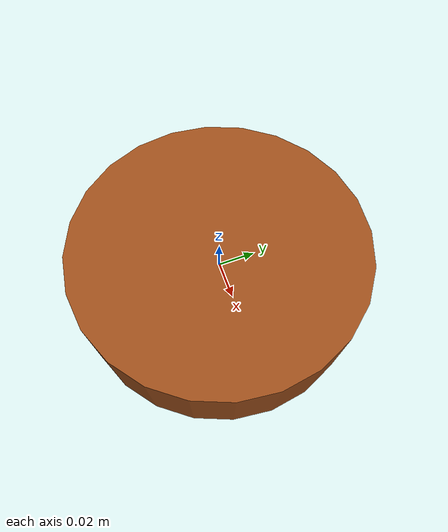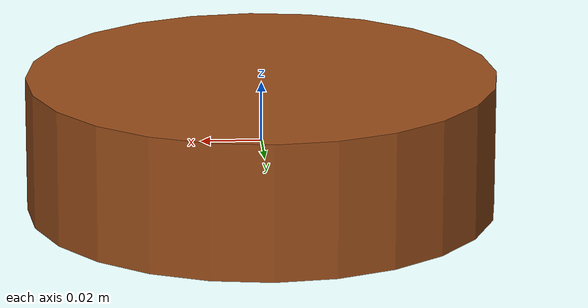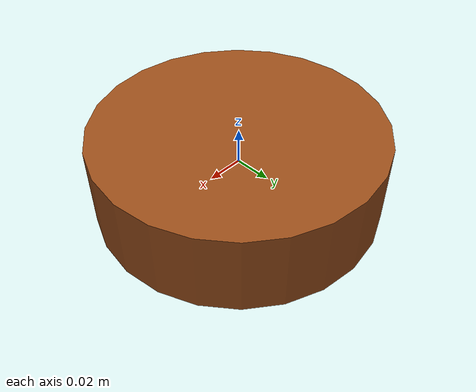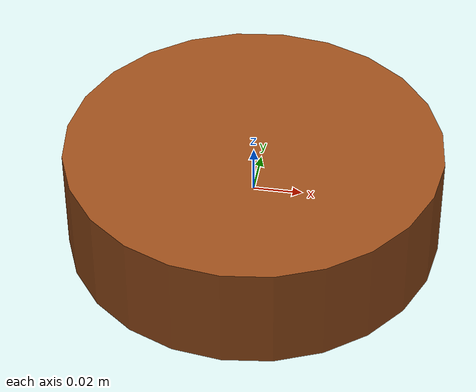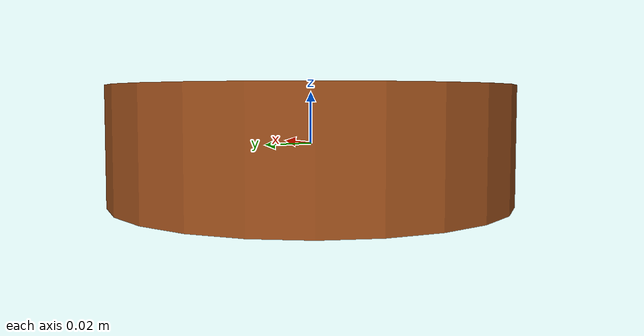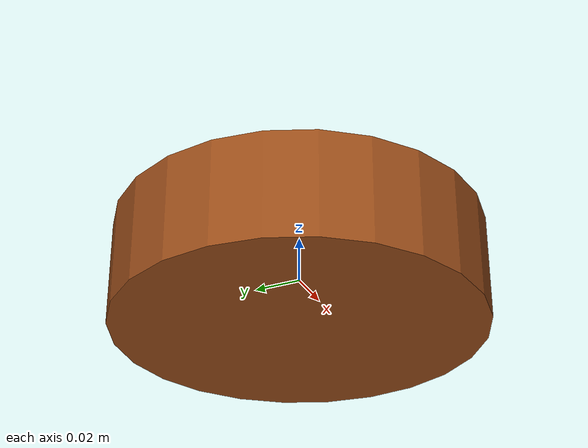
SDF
<?xml version="1.0" ?>
<sdf version="1.7">
  <model name="drum_cylinder">
    <static>true</static>
    <link name="drum_link">
      <visual name="drum_visual">
        <geometry>
          <cylinder>
            <radius>0.0775</radius>
            <length>0.045</length>
          </cylinder>
        </geometry>
        <material>
          <ambient>0.6 0.3 0.1 1</ambient>
          <diffuse>0.6 0.3 0.1 1</diffuse>
        </material>
      </visual>
      <collision name="drum_collision">
        <geometry>
          <cylinder>
            <radius>0.0775</radius>
            <length>0.045</length>
          </cylinder>
        </geometry>
      </collision>
    </link>
  </model>
</sdf>
